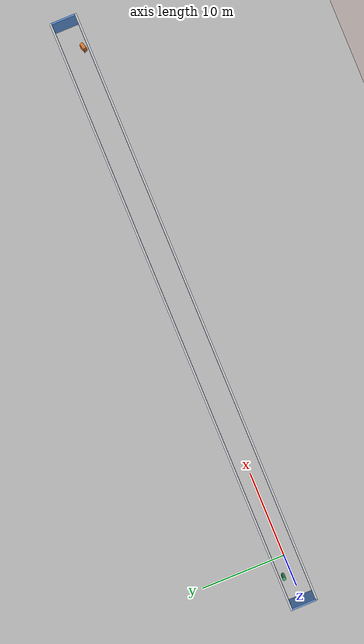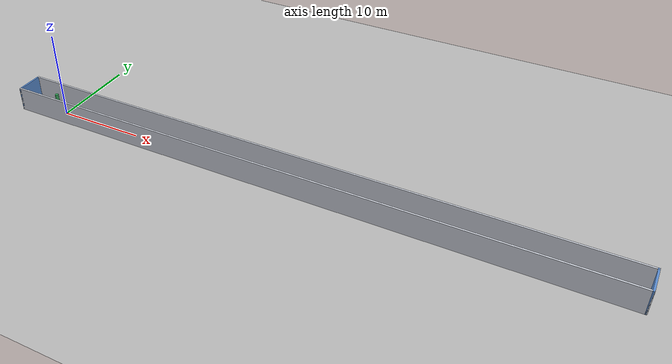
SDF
<?xml version="1.0"?>
<sdf version="1.10">
  <world name="slam_world">
    <physics name="default_physics" type="ode">
      <max_step_size>0.004</max_step_size>
      <real_time_factor>1.0</real_time_factor>
      <real_time_update_rate>250</real_time_update_rate>
    </physics>

    <plugin filename="gz-sim-physics-system" name="gz::sim::systems::Physics"/>
    <plugin filename="gz-sim-user-commands-system" name="gz::sim::systems::UserCommands"/>
    <plugin filename="gz-sim-scene-broadcaster-system" name="gz::sim::systems::SceneBroadcaster"/>
    <plugin filename="gz-sim-imu-system" name="gz::sim::systems::Imu"/>
    <plugin filename="gz-sim-sensors-system" name="gz::sim::systems::Sensors">
      <render_engine>ogre2</render_engine>
    </plugin>

    <gravity>0 0 -9.81</gravity>
    <scene>
      <ambient>0.45 0.45 0.45 1</ambient>
      <background>0.75 0.80 0.85 1</background>
      <shadows>false</shadows>
      <grid>true</grid>
    </scene>

    <light name="sun" type="directional">
      <cast_shadows>false</cast_shadows>
      <pose>25 0 15 0 0 0</pose>
      <diffuse>0.9 0.9 0.9 1</diffuse>
      <specular>0.2 0.2 0.2 1</specular>
      <attenuation>
        <range>1000</range>
        <constant>0.9</constant>
        <linear>0.01</linear>
        <quadratic>0.001</quadratic>
      </attenuation>
      <direction>-0.4 0.2 -1.0</direction>
    </light>

    <model name="ground_plane">
      <static>true</static>
      <link name="ground_link">
        <collision name="ground_collision">
          <geometry>
            <plane><normal>0 0 1</normal><size>90 20</size></plane>
          </geometry>
          <surface>
            <friction>
              <ode><mu>1.0</mu><mu2>1.0</mu2></ode>
            </friction>
          </surface>
        </collision>
        <visual name="ground_visual">
          <geometry>
            <plane><normal>0 0 1</normal><size>90 20</size></plane>
          </geometry>
          <material>
            <ambient>0.64 0.64 0.64 1</ambient>
            <diffuse>0.72 0.72 0.72 1</diffuse>
          </material>
        </visual>
      </link>
    </model>

    <model name="degenerate_corridor_3d">
      <static>true</static>
      <link name="corridor_link">
        <collision name="north_wall_collision">
          <pose>30 1.50 1.40 0 0 0</pose>
          <geometry><box><size>70.2 0.20 2.80</size></box></geometry>
        </collision>
        <visual name="north_wall_visual">
          <pose>30 1.50 1.40 0 0 0</pose>
          <geometry><box><size>70.2 0.20 2.80</size></box></geometry>
          <material>
            <ambient>0.82 0.84 0.88 1</ambient>
            <diffuse>0.82 0.84 0.88 1</diffuse>
          </material>
        </visual>

        <collision name="south_wall_collision">
          <pose>30 -1.50 1.40 0 0 0</pose>
          <geometry><box><size>70.2 0.20 2.80</size></box></geometry>
        </collision>
        <visual name="south_wall_visual">
          <pose>30 -1.50 1.40 0 0 0</pose>
          <geometry><box><size>70.2 0.20 2.80</size></box></geometry>
          <material>
            <ambient>0.82 0.84 0.88 1</ambient>
            <diffuse>0.82 0.84 0.88 1</diffuse>
          </material>
        </visual>

        <collision name="entrance_wall_collision">
          <pose>-5 0 1.40 0 0 0</pose>
          <geometry><box><size>0.20 3.20 2.80</size></box></geometry>
        </collision>
        <visual name="entrance_wall_visual">
          <pose>-5 0 1.40 0 0 0</pose>
          <geometry><box><size>0.20 3.20 2.80</size></box></geometry>
          <material>
            <ambient>0.35 0.55 0.82 1</ambient>
            <diffuse>0.35 0.55 0.82 1</diffuse>
          </material>
        </visual>

        <collision name="exit_wall_collision">
          <pose>65 0 1.40 0 0 0</pose>
          <geometry><box><size>0.20 3.20 2.80</size></box></geometry>
        </collision>
        <visual name="exit_wall_visual">
          <pose>65 0 1.40 0 0 0</pose>
          <geometry><box><size>0.20 3.20 2.80</size></box></geometry>
          <material>
            <ambient>0.35 0.55 0.82 1</ambient>
            <diffuse>0.35 0.55 0.82 1</diffuse>
          </material>
        </visual>

        <collision name="entrance_anchor_collision">
          <pose>-2.0 0.95 0.75 0 0 0</pose>
          <geometry>
            <cylinder><radius>0.20</radius><length>1.50</length></cylinder>
          </geometry>
        </collision>
        <visual name="entrance_anchor_visual">
          <pose>-2.0 0.95 0.75 0 0 0</pose>
          <geometry>
            <cylinder><radius>0.20</radius><length>1.50</length></cylinder>
          </geometry>
          <material>
            <ambient>0.20 0.62 0.34 1</ambient>
            <diffuse>0.20 0.62 0.34 1</diffuse>
          </material>
        </visual>

        <collision name="exit_anchor_collision">
          <pose>62.0 -0.92 0.65 0 0 0.35</pose>
          <geometry><box><size>0.70 0.40 1.30</size></box></geometry>
        </collision>
        <visual name="exit_anchor_visual">
          <pose>62.0 -0.92 0.65 0 0 0.35</pose>
          <geometry><box><size>0.70 0.40 1.30</size></box></geometry>
          <material>
            <ambient>0.88 0.48 0.18 1</ambient>
            <diffuse>0.88 0.48 0.18 1</diffuse>
          </material>
        </visual>
      </link>
    </model>

    <gui fullscreen="false">
      <plugin filename="MinimalScene" name="3D View">
        <gz-gui>
          <title>3D View</title>
          <property key="showTitleBar" type="bool">false</property>
          <property key="state" type="string">docked</property>
        </gz-gui>
        <engine>ogre2</engine>
        <scene>scene</scene>
        <ambient_light>0.4 0.4 0.4</ambient_light>
        <background_color>0.75 0.80 0.85</background_color>
        <camera_pose>20 -10 9 0 0.45 0.45</camera_pose>
        <camera_clip><near>0.10</near><far>1000</far></camera_clip>
      </plugin>
      <plugin filename="GzSceneManager" name="Scene Manager"/>
      <plugin filename="WorldControl" name="World control">
        <gz-gui>
          <title>World control</title>
          <property key="showTitleBar" type="bool">false</property>
          <property key="state" type="string">docked</property>
        </gz-gui>
        <play_pause>true</play_pause>
        <step>true</step>
        <start_paused>false</start_paused>
      </plugin>
    </gui>
  </world>
</sdf>
